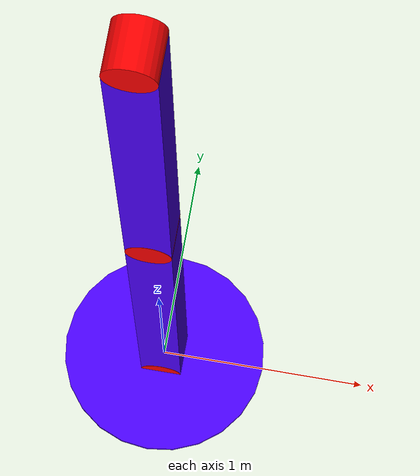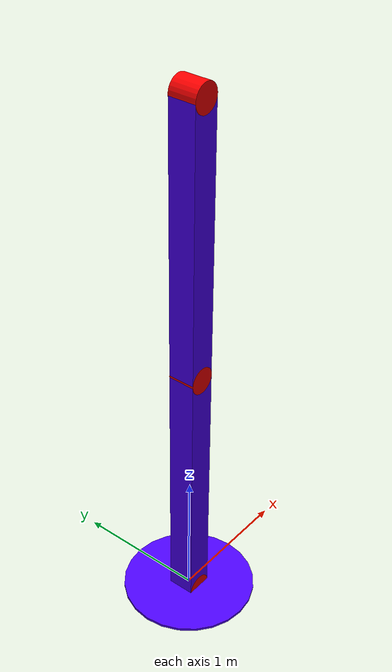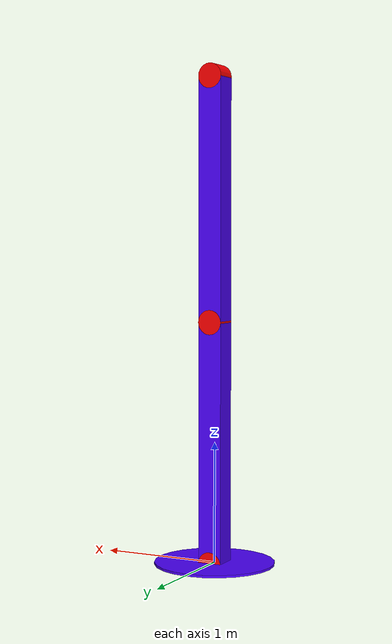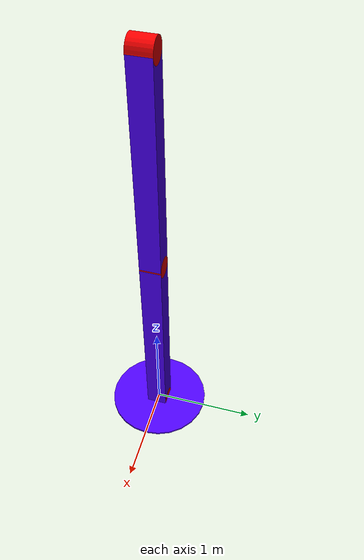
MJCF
<mujoco model="arm">
    <compiler inertiafromgeom="true"/>

    <default>
        <joint armature="0.001" damping="0.001"/>
        <geom contype="0" conaffinity="0" friction="1 0.1 0.1"/>
    </default>

    <!-- Arm Model: -->
    <worldbody>
        <geom name="base" type="cylinder" size="0.5 0.01" pos="0 0 0" quat="1 0 0 0" rgba="0.3 0 1 1"/>
        <body name="link_1" pos="0 0 0">
            <joint name="base_joint" type="hinge" axis="0 0 1"/>
            <geom name="base_joint_geom" type="cylinder" size="0.101 0.101" pos="0 0 0" quat="1 1 0 0" rgba="1 0 0 1"/>
            <joint name="link_1_joint" type="hinge" axis="0 1 0"/>
            <geom name="link_1_geom" type="box" size="0.1 0.1 1" pos="0 0 1" quat="1 0 0 0" rgba="0.3 0 1 1"/>
            <geom name="link_1_joint_geom" type="cylinder" size="0.101 0.101" pos="0 0 2" quat="1 1 0 0" rgba="1 0 0 1"/>
            <body name="link_2" pos="0 0 2">
                <joint name="link_2_joint" type="hinge" axis="0 1 0"/>
                <geom name="link_2_geom" type="box" size="0.1 0.1 1" pos="0 0 1" quat="1 0 0 0" rgba="0.3 0 1 1"/>
                <site name="end_effector" pos="0 0 2" size="0.101 0.101" quat="1 1 0 0" type="cylinder" rgba="1 0 0 1"/>
            </body>
        </body>
    </worldbody>

    <actuator>
        <motor name="base_motor" joint="base_joint"/>
        <motor name="link_1_motor" joint="link_1_joint"/>
        <motor name="link_2_motor" joint="link_2_joint"/>
    </actuator>

</mujoco>
